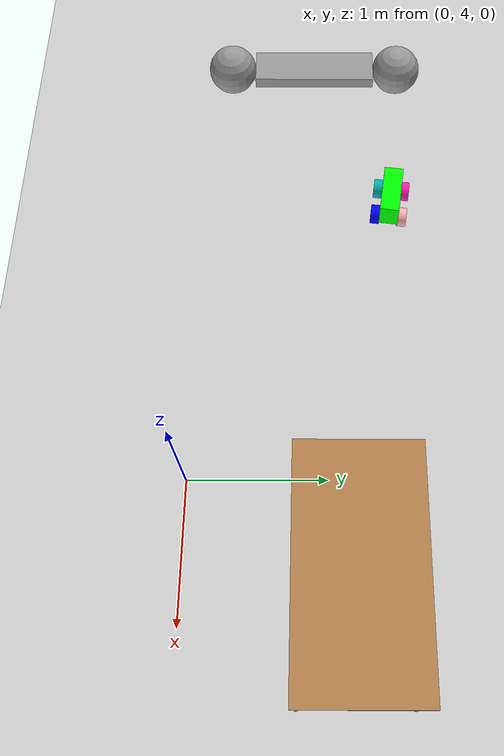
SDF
<sdf version="1.6">
 <world name="default">
  <model name="ground_plane">
   <static>1</static>
   <link name="link">
    <collision name="collision">
     <geometry><plane><normal>0 0 1</normal><size>100 100</size></plane></geometry>
     <surface>
      <contact><collide_bitmask>65535</collide_bitmask></contact>
      <friction><ode><mu>100</mu><mu2>50</mu2></ode></friction>
     </surface>
    </collision>
    <visual name="visual">
     <cast_shadows>0</cast_shadows>
     <geometry><plane><normal>0 0 1</normal><size>100 100</size></plane></geometry>
     <material>
      <script><uri>file://media/materials/scripts/gazebo.material</uri><name>Gazebo/Grey</name></script>
     </material>
    </visual>
   </link>
  </model>
  <model name="wheelrobot2">
   <link name="link_1">
    <pose>0.205245 -0.122906 0.4 0 -0 0</pose>
    <inertial>
     <mass>1</mass>
     <inertia>
      <ixx>0.166667</ixx>
      <ixy>0</ixy>
      <ixz>0</ixz>
      <iyy>0.166667</iyy>
      <iyz>0</iyz>
      <izz>0.166667</izz>
     </inertia>
    </inertial>
    <visual name="visual">
     <geometry><box><size>0.4 0.15 0.2</size></box></geometry>
     <material>
      <lighting>1</lighting>
      <script><uri>file://media/materials/scripts/gazebo.material</uri><name>Gazebo/Grey</name></script>
      <shader type="pixel"><normal_map>__default__</normal_map></shader>
      <ambient>0 1 0 1</ambient>
      <diffuse>0 1 0 1</diffuse>
      <specular>0 1 0.01 1</specular>
      <emissive>0 1 0 1</emissive>
     </material>
    </visual>
    <collision name="collision">
     <geometry><box><size>0.4 0.15 0.2</size></box></geometry>
     <surface>
      <friction>
       <ode><mu>1</mu><mu2>1</mu2><fdir1>0 0 0</fdir1><slip1>0</slip1><slip2>0</slip2></ode>
       <torsional>
        <coefficient>1</coefficient>
        <patch_radius>0</patch_radius>
        <surface_radius>0</surface_radius>
        <use_patch_radius>1</use_patch_radius>
        <ode><slip>0</slip></ode>
       </torsional>
      </friction>
      <bounce><restitution_coefficient>0</restitution_coefficient><threshold>1e+06</threshold></bounce>
      <contact>
       <collide_without_contact>0</collide_without_contact>
       <collide_without_contact_bitmask>1</collide_without_contact_bitmask>
       <collide_bitmask>1</collide_bitmask>
       <ode>
        <soft_cfm>0</soft_cfm>
        <soft_erp>0.2</soft_erp>
        <kp>1e+13</kp>
        <kd>1</kd>
        <max_vel>0.01</max_vel>
        <min_depth>0</min_depth>
       </ode>
       <bullet>
        <split_impulse>1</split_impulse>
        <split_impulse_penetration_threshold>-0.01</split_impulse_penetration_threshold>
        <soft_cfm>0</soft_cfm>
        <soft_erp>0.2</soft_erp>
        <kp>1e+13</kp>
        <kd>1</kd>
       </bullet>
      </contact>
     </surface>
    </collision>
   </link>
   <link name="link_2_clone">
    <pose>0.080245 -0.018274 0.3 1.5757 -0 0</pose>
    <inertial>
     <mass>1</mass>
     <inertia><ixx>0.145833</ixx><ixy>0</ixy><ixz>0</ixz><iyy>0.145833</iyy><iyz>0</iyz><izz>0.125</izz></inertia>
    </inertial>
    <visual name="visual">
     <geometry><cylinder><radius>0.075</radius><length>0.07</length></cylinder></geometry>
     <material>
      <lighting>1</lighting>
      <script><uri>file://media/materials/scripts/gazebo.material</uri><name>Gazebo/Grey</name></script>
      <shader type="pixel"><normal_map>__default__</normal_map></shader>
      <ambient>1 0.1 0.3 1</ambient>
      <diffuse>1 0.1 0.7 1</diffuse>
      <specular>0.1 1 0.01 1</specular>
      <emissive>0.1 1 0 1</emissive>
     </material>
    </visual>
    <collision name="collision">
     <geometry><cylinder><radius>0.075</radius><length>0.07</length></cylinder></geometry>
     <surface>
      <friction>
       <ode><mu>1</mu><mu2>1</mu2><fdir1>0 0 0</fdir1><slip1>0</slip1><slip2>0</slip2></ode>
       <torsional>
        <coefficient>1</coefficient>
        <patch_radius>0</patch_radius>
        <surface_radius>0</surface_radius>
        <use_patch_radius>1</use_patch_radius>
        <ode><slip>0</slip></ode>
       </torsional>
      </friction>
      <bounce><restitution_coefficient>0</restitution_coefficient><threshold>1e+06</threshold></bounce>
      <contact>
       <collide_without_contact>0</collide_without_contact>
       <collide_without_contact_bitmask>1</collide_without_contact_bitmask>
       <collide_bitmask>1</collide_bitmask>
       <ode>
        <soft_cfm>0</soft_cfm>
        <soft_erp>0.2</soft_erp>
        <kp>1e+13</kp>
        <kd>1</kd>
        <max_vel>0.01</max_vel>
        <min_depth>0</min_depth>
       </ode>
       <bullet>
        <split_impulse>1</split_impulse>
        <split_impulse_penetration_threshold>-0.01</split_impulse_penetration_threshold>
        <soft_cfm>0</soft_cfm>
        <soft_erp>0.2</soft_erp>
        <kp>1e+13</kp>
        <kd>1</kd>
       </bullet>
      </contact>
     </surface>
    </collision>
   </link>
   <link name="link_2_clone_0">
    <pose>0.330245 -0.018274 0.3 1.5757 -0 0</pose>
    <inertial>
     <mass>1</mass>
     <inertia><ixx>0.145833</ixx><ixy>0</ixy><ixz>0</ixz><iyy>0.145833</iyy><iyz>0</iyz><izz>0.125</izz></inertia>
    </inertial>
    <visual name="visual">
     <geometry><cylinder><radius>0.075</radius><length>0.07</length></cylinder></geometry>
     <material>
      <lighting>1</lighting>
      <script><uri>file://media/materials/scripts/gazebo.material</uri><name>Gazebo/Grey</name></script>
      <shader type="pixel"><normal_map>__default__</normal_map></shader>
      <ambient>1 0.3 1 1</ambient>
      <diffuse>1 0.7 0.7 1</diffuse>
      <specular>0.01 0.01 1 1</specular>
      <emissive>0.1 0 0.2 1</emissive>
     </material>
    </visual>
    <collision name="collision">
     <geometry><cylinder><radius>0.075</radius><length>0.07</length></cylinder></geometry>
     <surface>
      <friction>
       <ode><mu>1</mu><mu2>1</mu2><fdir1>0 0 0</fdir1><slip1>0</slip1><slip2>0</slip2></ode>
       <torsional>
        <coefficient>1</coefficient>
        <patch_radius>0</patch_radius>
        <surface_radius>0</surface_radius>
        <use_patch_radius>1</use_patch_radius>
        <ode><slip>0</slip></ode>
       </torsional>
      </friction>
      <bounce><restitution_coefficient>0</restitution_coefficient><threshold>1e+06</threshold></bounce>
      <contact>
       <collide_without_contact>0</collide_without_contact>
       <collide_without_contact_bitmask>1</collide_without_contact_bitmask>
       <collide_bitmask>1</collide_bitmask>
       <ode>
        <soft_cfm>0</soft_cfm>
        <soft_erp>0.2</soft_erp>
        <kp>1e+13</kp>
        <kd>1</kd>
        <max_vel>0.01</max_vel>
        <min_depth>0</min_depth>
       </ode>
       <bullet>
        <split_impulse>1</split_impulse>
        <split_impulse_penetration_threshold>-0.01</split_impulse_penetration_threshold>
        <soft_cfm>0</soft_cfm>
        <soft_erp>0.2</soft_erp>
        <kp>1e+13</kp>
        <kd>1</kd>
       </bullet>
      </contact>
     </surface>
    </collision>
   </link>
   <link name="link_2_clone_1">
    <pose>0.080245 -0.233274 0.3 1.5757 -0 0</pose>
    <inertial>
     <mass>1</mass>
     <inertia><ixx>0.145833</ixx><ixy>0</ixy><ixz>0</ixz><iyy>0.145833</iyy><iyz>0</iyz><izz>0.125</izz></inertia>
    </inertial>
    <visual name="visual">
     <geometry><cylinder><radius>0.075</radius><length>0.07</length></cylinder></geometry>
     <material>
      <lighting>1</lighting>
      <script><uri>file://media/materials/scripts/gazebo.material</uri><name>Gazebo/Grey</name></script>
      <shader type="pixel"><normal_map>__default__</normal_map></shader>
      <ambient>0 0.3 0.3 1</ambient>
      <diffuse>0 0.7 0.7 1</diffuse>
      <specular>0 0.01 0.01 1</specular>
      <emissive>0 0 0 1</emissive>
     </material>
    </visual>
    <collision name="collision">
     <geometry><cylinder><radius>0.075</radius><length>0.07</length></cylinder></geometry>
     <surface>
      <friction>
       <ode><mu>1</mu><mu2>1</mu2><fdir1>0 0 0</fdir1><slip1>0</slip1><slip2>0</slip2></ode>
       <torsional>
        <coefficient>1</coefficient>
        <patch_radius>0</patch_radius>
        <surface_radius>0</surface_radius>
        <use_patch_radius>1</use_patch_radius>
        <ode><slip>0</slip></ode>
       </torsional>
      </friction>
      <bounce><restitution_coefficient>0</restitution_coefficient><threshold>1e+06</threshold></bounce>
      <contact>
       <collide_without_contact>0</collide_without_contact>
       <collide_without_contact_bitmask>1</collide_without_contact_bitmask>
       <collide_bitmask>1</collide_bitmask>
       <ode>
        <soft_cfm>0</soft_cfm>
        <soft_erp>0.2</soft_erp>
        <kp>1e+13</kp>
        <kd>1</kd>
        <max_vel>0.01</max_vel>
        <min_depth>0</min_depth>
       </ode>
       <bullet>
        <split_impulse>1</split_impulse>
        <split_impulse_penetration_threshold>-0.01</split_impulse_penetration_threshold>
        <soft_cfm>0</soft_cfm>
        <soft_erp>0.2</soft_erp>
        <kp>1e+13</kp>
        <kd>1</kd>
       </bullet>
      </contact>
     </surface>
    </collision>
   </link>
   <link name="link_2_clone_2">
    <pose>0.330245 -0.233274 0.3 1.5757 -0 0</pose>
    <inertial>
     <mass>1</mass>
     <inertia><ixx>0.145833</ixx><ixy>0</ixy><ixz>0</ixz><iyy>0.145833</iyy><iyz>0</iyz><izz>0.125</izz></inertia>
    </inertial>
    <visual name="visual">
     <geometry><cylinder><radius>0.075</radius><length>0.07</length></cylinder></geometry>
     <material>
      <lighting>1</lighting>
      <script><uri>file://media/materials/scripts/gazebo.material</uri><name>Gazebo/Grey</name></script>
      <shader type="pixel"><normal_map>__default__</normal_map></shader>
      <ambient>0 0 1 1</ambient>
      <diffuse>0 0 1 1</diffuse>
      <specular>0 0 1 1</specular>
      <emissive>0 0 1 1</emissive>
     </material>
    </visual>
    <collision name="collision">
     <geometry><cylinder><radius>0.075</radius><length>0.07</length></cylinder></geometry>
     <surface>
      <friction>
       <ode><mu>1</mu><mu2>1</mu2><fdir1>0 0 0</fdir1><slip1>0</slip1><slip2>0</slip2></ode>
       <torsional>
        <coefficient>1</coefficient>
        <patch_radius>0</patch_radius>
        <surface_radius>0</surface_radius>
        <use_patch_radius>1</use_patch_radius>
        <ode><slip>0</slip></ode>
       </torsional>
      </friction>
      <bounce><restitution_coefficient>0</restitution_coefficient><threshold>1e+06</threshold></bounce>
      <contact>
       <collide_without_contact>0</collide_without_contact>
       <collide_without_contact_bitmask>1</collide_without_contact_bitmask>
       <collide_bitmask>1</collide_bitmask>
       <ode>
        <soft_cfm>0</soft_cfm>
        <soft_erp>0.2</soft_erp>
        <kp>1e+13</kp>
        <kd>1</kd>
        <max_vel>0.01</max_vel>
        <min_depth>0</min_depth>
       </ode>
       <bullet>
        <split_impulse>1</split_impulse>
        <split_impulse_penetration_threshold>-0.01</split_impulse_penetration_threshold>
        <soft_cfm>0</soft_cfm>
        <soft_erp>0.2</soft_erp>
        <kp>1e+13</kp>
        <kd>1</kd>
       </bullet>
      </contact>
     </surface>
    </collision>
   </link>
   <joint name="link_1_JOINT_1" type="revolute">
    <parent>link_1</parent>
    <child>link_2_clone_1</child>
    <axis>
     <xyz>0 0 1</xyz>
     <use_parent_model_frame>0</use_parent_model_frame>
     <limit>
      <lower>-1.79769e+308</lower>
      <upper>1.79769e+308</upper>
      <effort>-1</effort>
      <velocity>-1</velocity>
     </limit>
     <dynamics>
      <spring_reference>0</spring_reference>
      <spring_stiffness>0</spring_stiffness>
      <damping>0</damping>
     </dynamics>
    </axis>
    <physics>
     <ode><limit><cfm>0</cfm><erp>0.2</erp></limit><suspension><cfm>0</cfm><erp>0.2</erp></suspension></ode>
    </physics>
   </joint>
   <joint name="link_1_JOINT_2" type="revolute">
    <parent>link_1</parent>
    <child>link_2_clone_2</child>
    <axis>
     <xyz>1 0 0</xyz>
     <use_parent_model_frame>0</use_parent_model_frame>
     <limit>
      <lower>-1.79769e+308</lower>
      <upper>1.79769e+308</upper>
      <effort>-1</effort>
      <velocity>-1</velocity>
     </limit>
     <dynamics>
      <spring_reference>0</spring_reference>
      <spring_stiffness>0</spring_stiffness>
      <damping>0</damping>
     </dynamics>
    </axis>
    <physics>
     <ode><limit><cfm>0</cfm><erp>0.2</erp></limit><suspension><cfm>0</cfm><erp>0.2</erp></suspension></ode>
    </physics>
   </joint>
   <joint name="link_1_JOINT_3" type="revolute">
    <parent>link_1</parent>
    <child>link_2_clone_0</child>
    <axis>
     <xyz>1 0 0</xyz>
     <use_parent_model_frame>0</use_parent_model_frame>
     <limit>
      <lower>-1.79769e+308</lower>
      <upper>1.79769e+308</upper>
      <effort>-1</effort>
      <velocity>-1</velocity>
     </limit>
     <dynamics>
      <spring_reference>0</spring_reference>
      <spring_stiffness>0</spring_stiffness>
      <damping>0</damping>
     </dynamics>
    </axis>
    <physics>
     <ode><limit><cfm>0</cfm><erp>0.2</erp></limit><suspension><cfm>0</cfm><erp>0.2</erp></suspension></ode>
    </physics>
   </joint>
   <joint name="link_1_JOINT_4" type="revolute">
    <parent>link_1</parent>
    <child>link_2_clone</child>
    <axis>
     <xyz>1 0 0</xyz>
     <use_parent_model_frame>0</use_parent_model_frame>
     <limit>
      <lower>-1.79769e+308</lower>
      <upper>1.79769e+308</upper>
      <effort>-1</effort>
      <velocity>-1</velocity>
     </limit>
     <dynamics>
      <spring_reference>0</spring_reference>
      <spring_stiffness>0</spring_stiffness>
      <damping>0</damping>
     </dynamics>
    </axis>
    <physics>
     <ode><limit><cfm>0</cfm><erp>0.2</erp></limit><suspension><cfm>0</cfm><erp>0.2</erp></suspension></ode>
    </physics>
   </joint>
   <static>0</static>
   <allow_auto_disable>0</allow_auto_disable>
   <pose>-2.48482 5.65833 -0.224776 -6e-06 0.00068 -0.125997</pose>
  </model>
  <model name="myrobot2">
   <link name="link_1">
    <pose>0.225614 -0.46612 0.5 0 -0 0</pose>
    <inertial>
     <mass>1</mass>
     <inertia>
      <ixx>0.166667</ixx>
      <ixy>0</ixy>
      <ixz>0</ixz>
      <iyy>0.166667</iyy>
      <iyz>0</iyz>
      <izz>0.166667</izz>
     </inertia>
     <pose>0 0 0.2 0 -0 0</pose>
    </inertial>
    <visual name="visual">
     <geometry><box><size>0.3 1 0.1</size></box></geometry>
     <material>
      <lighting>1</lighting>
      <script><uri>file://media/materials/scripts/gazebo.material</uri><name>Gazebo/Grey</name></script>
      <shader type="pixel"><normal_map>__default__</normal_map></shader>
      <ambient>0.3 0.3 0.3 1</ambient>
      <diffuse>0.7 0.7 0.7 1</diffuse>
      <specular>0.01 0.01 0.01 1</specular>
      <emissive>0 0 0 1</emissive>
     </material>
    </visual>
    <collision name="collision">
     <geometry><box><size>0.3 1 0.1</size></box></geometry>
     <surface>
      <friction>
       <ode><mu>1</mu><mu2>1</mu2><fdir1>0 0 0</fdir1><slip1>0</slip1><slip2>0</slip2></ode>
       <torsional>
        <coefficient>1</coefficient>
        <patch_radius>0</patch_radius>
        <surface_radius>0</surface_radius>
        <use_patch_radius>1</use_patch_radius>
        <ode><slip>0</slip></ode>
       </torsional>
      </friction>
      <bounce><restitution_coefficient>0</restitution_coefficient><threshold>1e+06</threshold></bounce>
      <contact>
       <collide_without_contact>0</collide_without_contact>
       <collide_without_contact_bitmask>1</collide_without_contact_bitmask>
       <collide_bitmask>1</collide_bitmask>
       <ode>
        <soft_cfm>0</soft_cfm>
        <soft_erp>0.2</soft_erp>
        <kp>1e+13</kp>
        <kd>1</kd>
        <max_vel>0.01</max_vel>
        <min_depth>0</min_depth>
       </ode>
       <bullet>
        <split_impulse>1</split_impulse>
        <split_impulse_penetration_threshold>-0.01</split_impulse_penetration_threshold>
        <soft_cfm>0</soft_cfm>
        <soft_erp>0.2</soft_erp>
        <kp>1e+13</kp>
        <kd>1</kd>
       </bullet>
      </contact>
     </surface>
    </collision>
   </link>
   <link name="link_2">
    <pose>0.225614 -1.16612 0.5 0 -0 0</pose>
    <inertial>
     <mass>1</mass>
     <inertia><ixx>0.1</ixx><ixy>0</ixy><ixz>0</ixz><iyy>0.1</iyy><iyz>0</iyz><izz>0.1</izz></inertia>
     <pose>0 0 0.1 0 -0 0</pose>
    </inertial>
    <visual name="visual">
     <geometry><sphere><radius>0.2</radius></sphere></geometry>
     <material>
      <lighting>1</lighting>
      <script><uri>file://media/materials/scripts/gazebo.material</uri><name>Gazebo/Grey</name></script>
      <shader type="pixel"><normal_map>__default__</normal_map></shader>
      <ambient>0.3 0.3 0.3 1</ambient>
      <diffuse>0.7 0.7 0.7 1</diffuse>
      <specular>0.01 0.01 0.01 1</specular>
      <emissive>0 0 0 1</emissive>
     </material>
    </visual>
    <collision name="collision">
     <geometry><sphere><radius>0.2</radius></sphere></geometry>
     <surface>
      <friction>
       <ode><mu>1</mu><mu2>1</mu2><fdir1>0 0 0</fdir1><slip1>0</slip1><slip2>0</slip2></ode>
       <torsional>
        <coefficient>1</coefficient>
        <patch_radius>0</patch_radius>
        <surface_radius>0</surface_radius>
        <use_patch_radius>1</use_patch_radius>
        <ode><slip>0</slip></ode>
       </torsional>
      </friction>
      <bounce><restitution_coefficient>0</restitution_coefficient><threshold>1e+06</threshold></bounce>
      <contact>
       <collide_without_contact>0</collide_without_contact>
       <collide_without_contact_bitmask>1</collide_without_contact_bitmask>
       <collide_bitmask>1</collide_bitmask>
       <ode>
        <soft_cfm>0</soft_cfm>
        <soft_erp>0.2</soft_erp>
        <kp>1e+13</kp>
        <kd>1</kd>
        <max_vel>0.01</max_vel>
        <min_depth>0</min_depth>
       </ode>
       <bullet>
        <split_impulse>1</split_impulse>
        <split_impulse_penetration_threshold>-0.01</split_impulse_penetration_threshold>
        <soft_cfm>0</soft_cfm>
        <soft_erp>0.2</soft_erp>
        <kp>1e+13</kp>
        <kd>1</kd>
       </bullet>
      </contact>
     </surface>
    </collision>
   </link>
   <link name="link_2_clone">
    <pose>0.225614 0.23388 0.5 0 -0 0</pose>
    <inertial>
     <mass>1</mass>
     <inertia><ixx>0.1</ixx><ixy>0</ixy><ixz>0</ixz><iyy>0.1</iyy><iyz>0</iyz><izz>0.1</izz></inertia>
     <pose>0 0 0.1 0 -0 0</pose>
    </inertial>
    <visual name="visual">
     <geometry><sphere><radius>0.2</radius></sphere></geometry>
     <material>
      <lighting>1</lighting>
      <script><uri>file://media/materials/scripts/gazebo.material</uri><name>Gazebo/Grey</name></script>
      <shader type="pixel"><normal_map>__default__</normal_map></shader>
      <ambient>0.3 0.3 0.3 1</ambient>
      <diffuse>0.7 0.7 0.7 1</diffuse>
      <specular>0.01 0.01 0.01 1</specular>
      <emissive>0 0 0 1</emissive>
     </material>
    </visual>
    <collision name="collision">
     <geometry><sphere><radius>0.2</radius></sphere></geometry>
     <surface>
      <friction>
       <ode><mu>1</mu><mu2>1</mu2><fdir1>0 0 0</fdir1><slip1>0</slip1><slip2>0</slip2></ode>
       <torsional>
        <coefficient>1</coefficient>
        <patch_radius>0</patch_radius>
        <surface_radius>0</surface_radius>
        <use_patch_radius>1</use_patch_radius>
        <ode><slip>0</slip></ode>
       </torsional>
      </friction>
      <bounce><restitution_coefficient>0</restitution_coefficient><threshold>1e+06</threshold></bounce>
      <contact>
       <collide_without_contact>0</collide_without_contact>
       <collide_without_contact_bitmask>1</collide_without_contact_bitmask>
       <collide_bitmask>1</collide_bitmask>
       <ode>
        <soft_cfm>0</soft_cfm>
        <soft_erp>0.2</soft_erp>
        <kp>1e+13</kp>
        <kd>1</kd>
        <max_vel>0.01</max_vel>
        <min_depth>0</min_depth>
       </ode>
       <bullet>
        <split_impulse>1</split_impulse>
        <split_impulse_penetration_threshold>-0.01</split_impulse_penetration_threshold>
        <soft_cfm>0</soft_cfm>
        <soft_erp>0.2</soft_erp>
        <kp>1e+13</kp>
        <kd>1</kd>
       </bullet>
      </contact>
     </surface>
    </collision>
   </link>
   <joint name="link_1_JOINT_0" type="revolute">
    <parent>link_1</parent>
    <child>link_2</child>
    <axis>
     <xyz>0 1 0</xyz>
     <use_parent_model_frame>0</use_parent_model_frame>
     <limit>
      <lower>-1.79769e+308</lower>
      <upper>1.79769e+308</upper>
      <effort>-1</effort>
      <velocity>-1</velocity>
     </limit>
     <dynamics>
      <spring_reference>0</spring_reference>
      <spring_stiffness>0</spring_stiffness>
      <damping>0</damping>
      <friction>0</friction>
     </dynamics>
    </axis>
    <physics>
     <ode><limit><cfm>0</cfm><erp>0.2</erp></limit><suspension><cfm>0</cfm><erp>0.2</erp></suspension></ode>
    </physics>
   </joint>
   <joint name="link_1_JOINT_1" type="revolute">
    <parent>link_1</parent>
    <child>link_2_clone</child>
    <axis>
     <xyz>0 1 0</xyz>
     <use_parent_model_frame>0</use_parent_model_frame>
     <limit>
      <lower>-1.79769e+308</lower>
      <upper>1.79769e+308</upper>
      <effort>-1</effort>
      <velocity>-1</velocity>
     </limit>
     <dynamics>
      <spring_reference>0</spring_reference>
      <spring_stiffness>0</spring_stiffness>
      <damping>0</damping>
      <friction>0</friction>
     </dynamics>
    </axis>
    <physics>
     <ode><limit><cfm>0</cfm><erp>0.2</erp></limit><suspension><cfm>0</cfm><erp>0.2</erp></suspension></ode>
    </physics>
   </joint>
   <static>0</static>
   <pose>-3.81429 5.35847 -0.3 1e-06 -0 0</pose>
  </model>
  <model name="table_0">
   <static>1</static>
   <link name="link">
    <collision name="surface">
     <pose>0 0 1 0 -0 0</pose>
     <geometry><box><size>1.5 0.8 0.03</size></box></geometry>
     <surface><friction><ode><mu>0.6</mu><mu2>0.6</mu2></ode></friction></surface>
    </collision>
    <visual name="visual1">
     <pose>0 0 1 0 -0 0</pose>
     <geometry><box><size>1.5 0.8 0.03</size></box></geometry>
     <material>
      <script><uri>file://media/materials/scripts/gazebo.material</uri><name>Gazebo/Wood</name></script>
     </material>
    </visual>
    <collision name="front_left_leg">
     <pose>0.68 0.38 0.5 0 -0 0</pose>
     <geometry><cylinder><radius>0.02</radius><length>1</length></cylinder></geometry>
    </collision>
    <visual name="front_left_leg">
     <pose>0.68 0.38 0.5 0 -0 0</pose>
     <geometry><cylinder><radius>0.02</radius><length>1</length></cylinder></geometry>
     <material>
      <script><uri>file://media/materials/scripts/gazebo.material</uri><name>Gazebo/Grey</name></script>
     </material>
    </visual>
    <collision name="front_right_leg">
     <pose>0.68 -0.38 0.5 0 -0 0</pose>
     <geometry><cylinder><radius>0.02</radius><length>1</length></cylinder></geometry>
    </collision>
    <visual name="front_right_leg">
     <pose>0.68 -0.38 0.5 0 -0 0</pose>
     <geometry><cylinder><radius>0.02</radius><length>1</length></cylinder></geometry>
     <material>
      <script><uri>file://media/materials/scripts/gazebo.material</uri><name>Gazebo/Grey</name></script>
     </material>
    </visual>
    <collision name="back_right_leg">
     <pose>-0.68 -0.38 0.5 0 -0 0</pose>
     <geometry><cylinder><radius>0.02</radius><length>1</length></cylinder></geometry>
    </collision>
    <visual name="back_right_leg">
     <pose>-0.68 -0.38 0.5 0 -0 0</pose>
     <geometry><cylinder><radius>0.02</radius><length>1</length></cylinder></geometry>
     <material>
      <script><uri>file://media/materials/scripts/gazebo.material</uri><name>Gazebo/Grey</name></script>
     </material>
    </visual>
    <collision name="back_left_leg">
     <pose>-0.68 0.38 0.5 0 -0 0</pose>
     <geometry><cylinder><radius>0.02</radius><length>1</length></cylinder></geometry>
    </collision>
    <visual name="back_left_leg">
     <pose>-0.68 0.38 0.5 0 -0 0</pose>
     <geometry><cylinder><radius>0.02</radius><length>1</length></cylinder></geometry>
     <material>
      <script><uri>file://media/materials/scripts/gazebo.material</uri><name>Gazebo/Grey</name></script>
     </material>
    </visual>
   </link>
   <pose>0.798521 5.16714 0 0 -0 0</pose>
  </model>
 </world>
</sdf>
